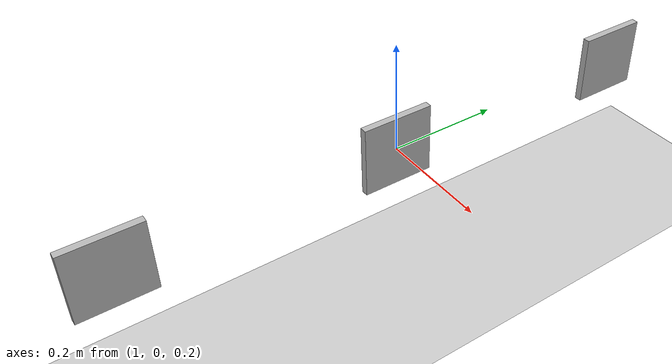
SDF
<?xml version="1.0" ?>

<sdf version="1.5">
	<world name="default">
		<!-- A global light source -->
		<light type="directional" name="my_light">
		    <pose>0 0 10 0 0 0</pose>
		    <diffuse>.9 .9 .9 1</diffuse>
		    <specular>.1 .1 .1 1</specular>
		    <attenuation>
		        <range>20</range>
		    </attenuation>
		    <direction>1 1 -1</direction>
		    <cast_shadows>true</cast_shadows>
		</light>

		<!-- A ground plane -->
		<include>
			<uri>model://ground_plane</uri>
		</include>

        	<!-- aruco landmark 0 -->
		<include>
			<uri>model://aruco_marker_0</uri>
			<pose>1 -0.5 0.2 1.5708 0 0</pose>
		</include>

        	<!-- aruco landmark 1 -->
		<include>
			<uri>model://aruco_marker_1</uri>
			<pose>1 0 0.2 1.5708 0 0</pose>
		</include>

        	<!-- aruco landmark 2 -->
		<include>
			<uri>model://aruco_marker_2</uri>
			<pose>1 0.5 0.2 1.5708 0 0</pose>
		</include>
	</world>
</sdf>

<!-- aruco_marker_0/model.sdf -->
<sdf version="1.5">
  <model name="aruco_marker_0">
    <static>true</static>
    <link name="base">
      <collision name="collision">
        <geometry>
          <box>
            <size>0.013125 0.13125 0.13125</size>
          </box>
        </geometry>
        <surface>
          <friction>
            <ode>
              <mu>100</mu>
              <mu2>50</mu2>
            </ode>
          </friction>
        </surface>
      </collision>

      <visual name="visual">
        <geometry>
          <box>
            <size>0.013125 0.13125 0.13125</size>
          </box>
        </geometry>
        <material>
          <script>
            <uri>model://aruco_marker_0/materials/scripts</uri>
            <uri>model://aruco_marker_0/materials/textures</uri>
            <name>aruco_marker_0/Diffuse</name>
          </script>
        </material>
      </visual>
    </link>

    <joint name="world_joint" type="fixed">
      <child>base</child>
      <parent>world</parent>
      <axis>
        <limit>
          <lower>0</lower>
          <upper>0</upper>
        </limit>
        <xyz>0 1 0</xyz>
        <dynamics>
          <damping>1.0</damping>
        </dynamics>
        <use_parent_model_frame>true</use_parent_model_frame>
      </axis>
      <physics>
        <ode>
          <cfm_damping>1</cfm_damping>
        </ode>
      </physics>
    </joint>
  </model>
</sdf>

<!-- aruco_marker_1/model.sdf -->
<sdf version="1.5">
  <model name="aruco_marker_1">
    <static>true</static>
    <link name="link">
      <collision name="collision">
        <geometry>
          <box>
            <size>0.013125 0.13125 0.13125</size>
          </box>
        </geometry>
        <surface>
          <friction>
            <ode>
              <mu>100</mu>
              <mu2>50</mu2>
            </ode>
          </friction>
        </surface>
      </collision>

      <visual name="visual">
        <geometry>
          <box>
            <size>0.013125 0.13125 0.13125</size>
          </box>
        </geometry>
        <material>
          <script>
            <uri>model://aruco_marker_1/materials/scripts</uri>
            <uri>model://aruco_marker_1/materials/textures</uri>
            <name>aruco_marker_1/Diffuse</name>
          </script>
        </material>
      </visual>
    </link>
  </model>
</sdf>

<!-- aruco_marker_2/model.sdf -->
<sdf version="1.5">
  <model name="aruco_marker_2">
    <static>true</static>
    <link name="link">
      <collision name="collision">
        <geometry>
          <box>
            <size>0.013125 0.13125 0.13125</size>
          </box>
        </geometry>
        <surface>
          <friction>
            <ode>
              <mu>100</mu>
              <mu2>50</mu2>
            </ode>
          </friction>
        </surface>
      </collision>

      <visual name="visual">
        <geometry>
          <box>
            <size>0.013125 0.13125 0.13125</size>
          </box>
        </geometry>
        <material>
          <script>
            <uri>model://aruco_marker_2/materials/scripts</uri>
            <uri>model://aruco_marker_2/materials/textures</uri>
            <name>aruco_marker_2/Diffuse</name>
          </script>
        </material>
      </visual>
    </link>
  </model>
</sdf>
